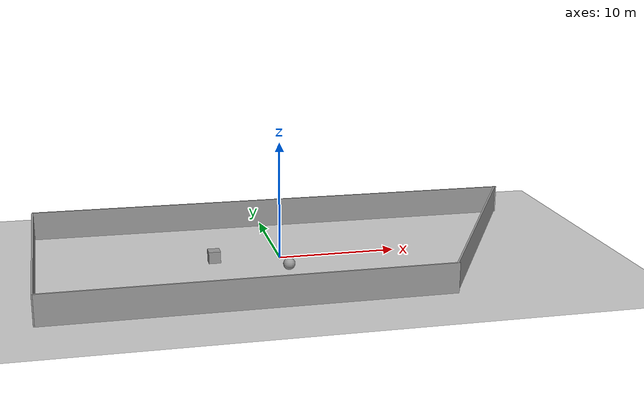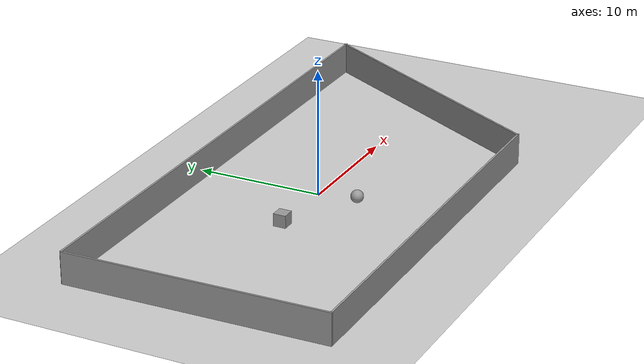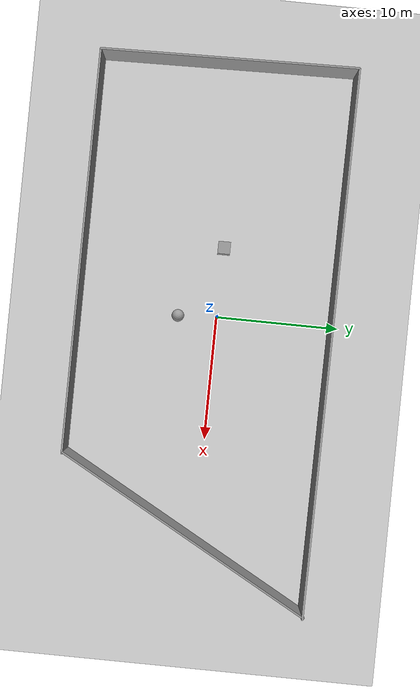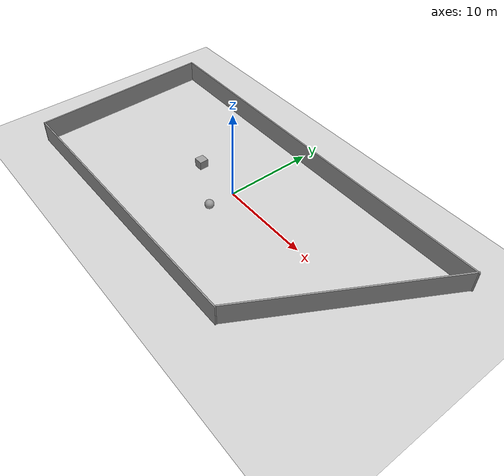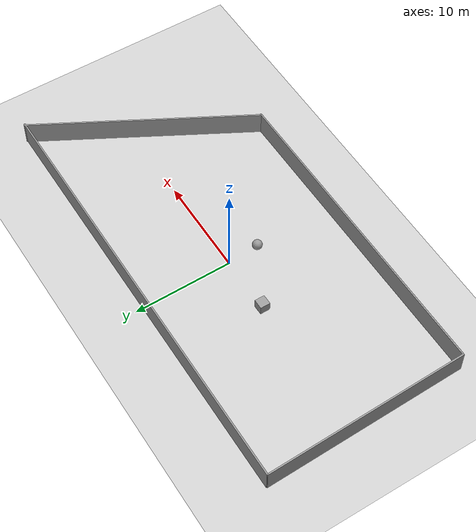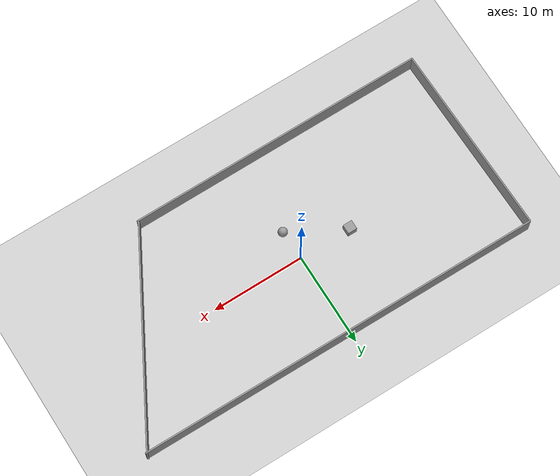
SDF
<sdf version="1.7">
 <world name="default">
  <light name="sun" type="directional">
   <pose>0 0 10 0 -0 0</pose>
   <diffuse>0.8 0.8 0.8 1</diffuse>
   <specular>0.2 0.2 0.2 1</specular>
   <attenuation>
    <range>1000</range>
    <constant>0.9</constant>
    <linear>0.01</linear>
    <quadratic>0.001</quadratic>
   </attenuation>
   <direction>-0.5 0.1 -0.9</direction>
   <spot><inner_angle>0</inner_angle><outer_angle>0</outer_angle><falloff>0</falloff></spot>
  </light>
  <model name="ground_plane">
   <static>1</static>
   <link name="link">
    <collision name="collision">
     <geometry><plane><normal>0 0 1</normal><size>100 100</size></plane></geometry>
     <surface>
      <contact><collide_bitmask>65535</collide_bitmask></contact>
      <friction><ode><mu>100</mu><mu2>50</mu2></ode></friction>
     </surface>
    </collision>
    <visual name="visual">
     <cast_shadows>0</cast_shadows>
     <geometry><plane><normal>0 0 1</normal><size>100 100</size></plane></geometry>
     <material>
      <script><uri>file://media/materials/scripts/gazebo.material</uri><name>Gazebo/Grey</name></script>
     </material>
    </visual>
   </link>
  </model>
  <gravity>0 0 -9.8</gravity>
  <magnetic_field>6e-06 2.3e-05 -4.2e-05</magnetic_field>
  <atmosphere type="adiabatic"/>
  <physics type="ode">
   <max_step_size>0.001</max_step_size>
   <real_time_factor>1</real_time_factor>
   <real_time_update_rate>1000</real_time_update_rate>
  </physics>
  <scene><ambient>0.4 0.4 0.4 1</ambient><background>0.7 0.7 0.7 1</background><shadows>1</shadows></scene>
  <spherical_coordinates>
   <surface_model>EARTH_WGS84</surface_model>
   <latitude_deg>0</latitude_deg>
   <longitude_deg>0</longitude_deg>
   <elevation>0</elevation>
   <heading_deg>0</heading_deg>
  </spherical_coordinates>
  <model name="unit_box">
   <pose>-5.66144 0.064139 0.499995 0 1e-05 0</pose>
   <link name="link">
    <inertial>
     <mass>1</mass>
     <inertia>
      <ixx>0.166667</ixx>
      <ixy>0</ixy>
      <ixz>0</ixz>
      <iyy>0.166667</iyy>
      <iyz>0</iyz>
      <izz>0.166667</izz>
     </inertia>
    </inertial>
    <collision name="collision"><geometry><box><size>1 1 1</size></box></geometry></collision>
    <visual name="visual">
     <geometry><box><size>1 1 1</size></box></geometry>
     <material>
      <script><name>Gazebo/Grey</name><uri>file://media/materials/scripts/gazebo.material</uri></script>
     </material>
    </visual>
   </link>
  </model>
  <model name="walls.world">
   <pose>1.22835 -0.935843 0 0 -0 0</pose>
   <link name="Wall_0">
    <collision name="Wall_0_Collision">
     <geometry><box><size>20.6164 0.15 2.5</size></box></geometry>
     <pose>0 0 1.25 0 -0 0</pose>
    </collision>
    <visual name="Wall_0_Visual">
     <pose>0 0 1.25 0 -0 0</pose>
     <geometry><box><size>20.6164 0.15 2.5</size></box></geometry>
     <material>
      <script><uri>file://media/materials/scripts/gazebo.material</uri><name>Gazebo/Grey</name></script>
      <ambient>1 1 1 1</ambient>
     </material>
     <meta><layer>0</layer></meta>
    </visual>
    <pose>-21.6634 -0.029853 0 0 -0 1.5916</pose>
   </link>
   <link name="Wall_1">
    <collision name="Wall_1_Collision">
     <geometry><box><size>43.8436 0.15 2.5</size></box></geometry>
     <pose>0 0 1.25 0 -0 0</pose>
    </collision>
    <visual name="Wall_1_Visual">
     <pose>0 0 1.25 0 -0 0</pose>
     <geometry><box><size>43.8436 0.15 2.5</size></box></geometry>
     <material>
      <script><uri>file://media/materials/scripts/gazebo.material</uri><name>Gazebo/Grey</name></script>
      <ambient>1 1 1 1</ambient>
     </material>
     <meta><layer>0</layer></meta>
    </visual>
    <pose>0.030982 10.1408 0 0 -0 -0.005546</pose>
   </link>
   <link name="Wall_2">
    <collision name="Wall_2_Collision">
     <geometry><box><size>23.2604 0.15 2.5</size></box></geometry>
     <pose>0 0 1.25 0 -0 0</pose>
    </collision>
    <visual name="Wall_2_Visual">
     <pose>0 0 1.25 0 -0 0</pose>
     <geometry><box><size>23.2604 0.15 2.5</size></box></geometry>
     <material>
      <script><uri>file://media/materials/scripts/gazebo.material</uri><name>Gazebo/Grey</name></script>
      <ambient>1 1 1 1</ambient>
     </material>
     <meta><layer>0</layer></meta>
    </visual>
    <pose>16.2194 -0.028471 0 0 -0 -2.07642</pose>
   </link>
   <link name="Wall_3">
    <collision name="Wall_3_Collision">
     <geometry><box><size>32.1809 0.15 2.5</size></box></geometry>
     <pose>0 0 1.25 0 -0 0</pose>
    </collision>
    <visual name="Wall_3_Visual">
     <pose>0 0 1.25 0 -0 0</pose>
     <geometry><box><size>32.1809 0.15 2.5</size></box></geometry>
     <material>
      <script><uri>file://media/materials/scripts/gazebo.material</uri><name>Gazebo/Grey</name></script>
      <ambient>1 1 1 1</ambient>
     </material>
     <meta><layer>0</layer></meta>
    </visual>
    <pose>-5.33159 -10.2299 0 0 -0 -3.13966</pose>
   </link>
   <static>1</static>
  </model>
  <model name="unit_sphere">
   <pose>0.149819 -3.14241 0.5 0 -0 0</pose>
   <link name="link">
    <inertial>
     <mass>1</mass>
     <inertia><ixx>0.1</ixx><ixy>0</ixy><ixz>0</ixz><iyy>0.1</iyy><iyz>0</iyz><izz>0.1</izz></inertia>
    </inertial>
    <collision name="collision"><geometry><sphere><radius>0.5</radius></sphere></geometry></collision>
    <visual name="visual">
     <geometry><sphere><radius>0.5</radius></sphere></geometry>
     <material>
      <script><name>Gazebo/Grey</name><uri>file://media/materials/scripts/gazebo.material</uri></script>
     </material>
    </visual>
   </link>
  </model>
 </world>
</sdf>
